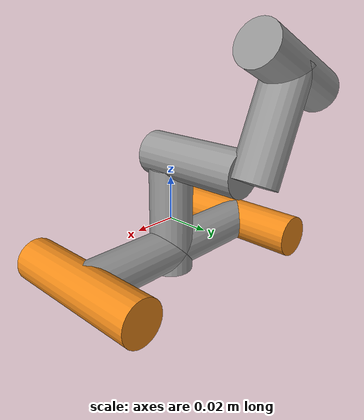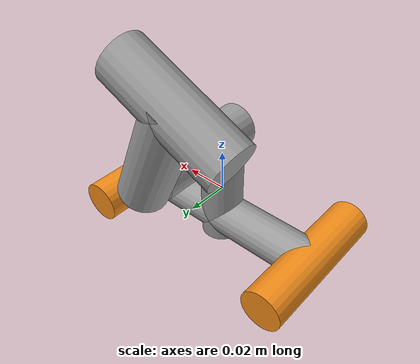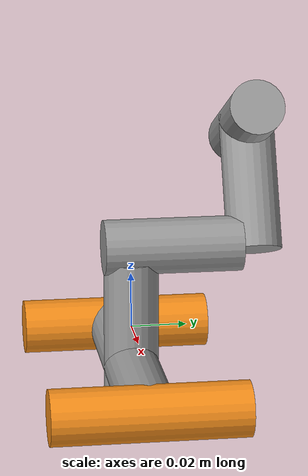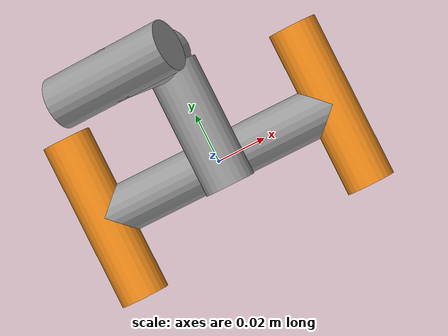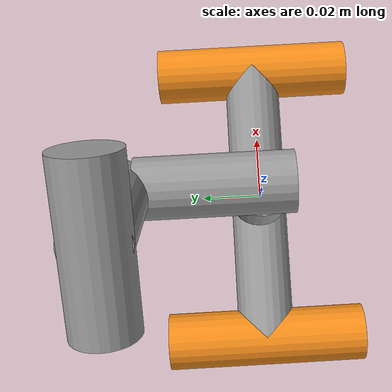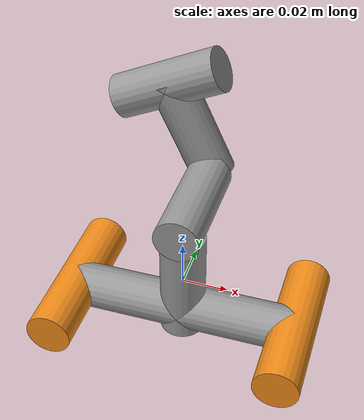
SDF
<?xml version='1.0'?>
<sdf version='1.7'>
  <model name='acoustic_reciever'>
    <link name='link'>
      <inertial>
        <mass>0.0001</mass>
        <inertia>
          <ixx>9e-08</ixx>
          <ixy>0</ixy>
          <ixz>0</ixz>
          <iyy>9e-08</iyy>
          <iyz>0</iyz>
          <izz>1e-08</izz>
        </inertia>
        <pose>0 0 0 0 -0 0</pose>
      </inertial>
      <self_collide>0</self_collide>
      <enable_wind>0</enable_wind>
      <kinematic>0</kinematic>
      <pose>0 -0 -0.015 -0.079518 1.57079 -0.079518</pose>
      <gravity>1</gravity>
      <visual name='visual'>
        <geometry>
          <cylinder>
            <radius>0.01</radius>
            <length>0.1</length>
          </cylinder>
        </geometry>
        <material>
          <script>
            <name>Gazebo/Grey</name>
            <uri>file://media/materials/scripts/gazebo.material</uri>
          </script>
          <shader type='pixel'>
            <normal_map>__default__</normal_map>
          </shader>
          <ambient>0.3 0.3 0.3 1</ambient>
          <diffuse>0.7 0.7 0.7 1</diffuse>
          <specular>0.01 0.01 0.01 1</specular>
          <emissive>0 0 0 1</emissive>
        </material>
        <pose>0 0 0 0 -0 0</pose>
        <transparency>0</transparency>
        <cast_shadows>1</cast_shadows>
      </visual>
      <collision name='collision_2'>
        <laser_retro>0</laser_retro>
        <max_contacts>10</max_contacts>
        <pose>0 0 0 0 -0 0</pose>
        <geometry>
          <box>
            <size>0.02 0.2 0.1</size>
          </box>
        </geometry>
        <surface>
          <friction>
            <ode>
              <mu>1</mu>
              <mu2>1</mu2>
              <fdir1>0 0 0</fdir1>
              <slip1>0</slip1>
              <slip2>0</slip2>
            </ode>
            <torsional>
              <coefficient>1</coefficient>
              <patch_radius>0</patch_radius>
              <surface_radius>0</surface_radius>
              <use_patch_radius>1</use_patch_radius>
              <ode>
                <slip>0</slip>
              </ode>
            </torsional>
          </friction>
          <bounce>
            <restitution_coefficient>0</restitution_coefficient>
            <threshold>1e+06</threshold>
          </bounce>
          <contact>
            <collide_without_contact>0</collide_without_contact>
            <collide_without_contact_bitmask>1</collide_without_contact_bitmask>
            <collide_bitmask>1</collide_bitmask>
            <ode>
              <soft_cfm>0</soft_cfm>
              <soft_erp>0.2</soft_erp>
              <kp>1e+13</kp>
              <kd>1</kd>
              <max_vel>0.01</max_vel>
              <min_depth>0</min_depth>
            </ode>
            <bullet>
              <split_impulse>1</split_impulse>
              <split_impulse_penetration_threshold>-0.01</split_impulse_penetration_threshold>
              <soft_cfm>0</soft_cfm>
              <soft_erp>0.2</soft_erp>
              <kp>1e+13</kp>
              <kd>1</kd>
            </bullet>
          </contact>
        </surface>
      </collision>
    </link>
    <link name='link_clone'>
      <inertial>
        <mass>0.0001</mass>
        <inertia>
          <ixx>4e-08</ixx>
          <ixy>0</ixy>
          <ixz>0</ixz>
          <iyy>4e-08</iyy>
          <iyz>0</iyz>
          <izz>1e-08</izz>
        </inertia>
        <pose>0 0 0 0 -0 0</pose>
      </inertial>
      <self_collide>0</self_collide>
      <enable_wind>0</enable_wind>
      <kinematic>0</kinematic>
      <pose>0.05 -0 -0.015 0.013669 1.57079 1.58718</pose>
      <gravity>1</gravity>
      <visual name='visual'>
        <geometry>
          <cylinder>
            <radius>0.01</radius>
            <length>0.07</length>
          </cylinder>
        </geometry>
        <material>
          <script>
            <name>Gazebo/Orange</name>
            <uri>file://media/materials/scripts/gazebo.material</uri>
          </script>
          <shader type='pixel'>
            <normal_map>__default__</normal_map>
          </shader>
          <ambient>1 0.647 0 1</ambient>
          <diffuse>0.7 0.7 0.7 1</diffuse>
          <specular>0.1 0.006 0 1</specular>
          <emissive>0 0 0 1</emissive>
        </material>
        <pose>0 0 0 0 -0 0</pose>
        <transparency>0</transparency>
        <cast_shadows>1</cast_shadows>
      </visual>
      <collision name='collision'>
        <laser_retro>0</laser_retro>
        <max_contacts>10</max_contacts>
        <pose>0 0 0 0 -0 0</pose>
        <geometry>
          <cylinder>
            <radius>0.01</radius>
            <length>0.07</length>
          </cylinder>
        </geometry>
        <surface>
          <friction>
            <ode>
              <mu>1</mu>
              <mu2>1</mu2>
              <fdir1>0 0 0</fdir1>
              <slip1>0</slip1>
              <slip2>0</slip2>
            </ode>
            <torsional>
              <coefficient>1</coefficient>
              <patch_radius>0</patch_radius>
              <surface_radius>0</surface_radius>
              <use_patch_radius>1</use_patch_radius>
              <ode>
                <slip>0</slip>
              </ode>
            </torsional>
          </friction>
          <bounce>
            <restitution_coefficient>0</restitution_coefficient>
            <threshold>1e+06</threshold>
          </bounce>
          <contact>
            <collide_without_contact>0</collide_without_contact>
            <collide_without_contact_bitmask>1</collide_without_contact_bitmask>
            <collide_bitmask>1</collide_bitmask>
            <ode>
              <soft_cfm>0</soft_cfm>
              <soft_erp>0.2</soft_erp>
              <kp>1e+13</kp>
              <kd>1</kd>
              <max_vel>0.01</max_vel>
              <min_depth>0</min_depth>
            </ode>
            <bullet>
              <split_impulse>1</split_impulse>
              <split_impulse_penetration_threshold>-0.01</split_impulse_penetration_threshold>
              <soft_cfm>0</soft_cfm>
              <soft_erp>0.2</soft_erp>
              <kp>1e+13</kp>
              <kd>1</kd>
            </bullet>
          </contact>
        </surface>
      </collision>
    </link>
    <link name='link_clone_0'>
      <inertial>
        <mass>0.0001</mass>
        <inertia>
          <ixx>2e-08</ixx>
          <ixy>0</ixy>
          <ixz>0</ixz>
          <iyy>2e-08</iyy>
          <iyz>0</iyz>
          <izz>1e-08</izz>
        </inertia>
        <pose>0 0 0 0 -0 0</pose>
      </inertial>
      <self_collide>0</self_collide>
      <enable_wind>0</enable_wind>
      <kinematic>0</kinematic>
      <pose>0 0 0 0 -0 0</pose>
      <gravity>1</gravity>
      <visual name='visual'>
        <geometry>
          <cylinder>
            <radius>0.01</radius>
            <length>0.05</length>
          </cylinder>
        </geometry>
        <material>
          <script>
            <name>Gazebo/Grey</name>
            <uri>file://media/materials/scripts/gazebo.material</uri>
          </script>
          <shader type='pixel'>
            <normal_map>__default__</normal_map>
          </shader>
          <ambient>0.3 0.3 0.3 1</ambient>
          <diffuse>0.7 0.7 0.7 1</diffuse>
          <specular>0.01 0.01 0.01 1</specular>
          <emissive>0 0 0 1</emissive>
        </material>
        <pose>0 0 0 0 -0 0</pose>
        <transparency>0</transparency>
        <cast_shadows>1</cast_shadows>
      </visual>
      <collision name='collision'>
        <laser_retro>0</laser_retro>
        <max_contacts>10</max_contacts>
        <pose>0 0 0 0 -0 0</pose>
        <geometry>
          <cylinder>
            <radius>0.01</radius>
            <length>0.05</length>
          </cylinder>
        </geometry>
        <surface>
          <friction>
            <ode>
              <mu>1</mu>
              <mu2>1</mu2>
              <fdir1>0 0 0</fdir1>
              <slip1>0</slip1>
              <slip2>0</slip2>
            </ode>
            <torsional>
              <coefficient>1</coefficient>
              <patch_radius>0</patch_radius>
              <surface_radius>0</surface_radius>
              <use_patch_radius>1</use_patch_radius>
              <ode>
                <slip>0</slip>
              </ode>
            </torsional>
          </friction>
          <bounce>
            <restitution_coefficient>0</restitution_coefficient>
            <threshold>1e+06</threshold>
          </bounce>
          <contact>
            <collide_without_contact>0</collide_without_contact>
            <collide_without_contact_bitmask>1</collide_without_contact_bitmask>
            <collide_bitmask>1</collide_bitmask>
            <ode>
              <soft_cfm>0</soft_cfm>
              <soft_erp>0.2</soft_erp>
              <kp>1e+13</kp>
              <kd>1</kd>
              <max_vel>0.01</max_vel>
              <min_depth>0</min_depth>
            </ode>
            <bullet>
              <split_impulse>1</split_impulse>
              <split_impulse_penetration_threshold>-0.01</split_impulse_penetration_threshold>
              <soft_cfm>0</soft_cfm>
              <soft_erp>0.2</soft_erp>
              <kp>1e+13</kp>
              <kd>1</kd>
            </bullet>
          </contact>
        </surface>
      </collision>
    </link>
    <link name='link_clone_0_clone'>
      <inertial>
        <mass>1e-08</mass>
        <inertia>
          <ixx>0</ixx>
          <ixy>0</ixy>
          <ixz>0</ixz>
          <iyy>0</iyy>
          <iyz>0</iyz>
          <izz>0</izz>
        </inertia>
        <pose>0 0 0 0 -0 0</pose>
      </inertial>
      <self_collide>0</self_collide>
      <enable_wind>0</enable_wind>
      <kinematic>0</kinematic>
      <pose>0 0.015 0.03 1.5708 -0 0</pose>
      <gravity>1</gravity>
      <visual name='visual'>
        <geometry>
          <cylinder>
            <radius>0.01</radius>
            <length>0.05</length>
          </cylinder>
        </geometry>
        <material>
          <script>
            <name>Gazebo/Grey</name>
            <uri>file://media/materials/scripts/gazebo.material</uri>
          </script>
          <shader type='pixel'>
            <normal_map>__default__</normal_map>
          </shader>
          <ambient>0.3 0.3 0.3 1</ambient>
          <diffuse>0.7 0.7 0.7 1</diffuse>
          <specular>0.01 0.01 0.01 1</specular>
          <emissive>0 0 0 1</emissive>
        </material>
        <pose>0 0 0 0 -0 0</pose>
        <transparency>0</transparency>
        <cast_shadows>1</cast_shadows>
      </visual>
      <collision name='collision'>
        <laser_retro>0</laser_retro>
        <max_contacts>10</max_contacts>
        <pose>0 0 0 0 -0 0</pose>
        <geometry>
          <cylinder>
            <radius>0.01</radius>
            <length>0.05</length>
          </cylinder>
        </geometry>
        <surface>
          <friction>
            <ode>
              <mu>1</mu>
              <mu2>1</mu2>
              <fdir1>0 0 0</fdir1>
              <slip1>0</slip1>
              <slip2>0</slip2>
            </ode>
            <torsional>
              <coefficient>1</coefficient>
              <patch_radius>0</patch_radius>
              <surface_radius>0</surface_radius>
              <use_patch_radius>1</use_patch_radius>
              <ode>
                <slip>0</slip>
              </ode>
            </torsional>
          </friction>
          <bounce>
            <restitution_coefficient>0</restitution_coefficient>
            <threshold>1e+06</threshold>
          </bounce>
          <contact>
            <collide_without_contact>0</collide_without_contact>
            <collide_without_contact_bitmask>1</collide_without_contact_bitmask>
            <collide_bitmask>1</collide_bitmask>
            <ode>
              <soft_cfm>0</soft_cfm>
              <soft_erp>0.2</soft_erp>
              <kp>1e+13</kp>
              <kd>1</kd>
              <max_vel>0.01</max_vel>
              <min_depth>0</min_depth>
            </ode>
            <bullet>
              <split_impulse>1</split_impulse>
              <split_impulse_penetration_threshold>-0.01</split_impulse_penetration_threshold>
              <soft_cfm>0</soft_cfm>
              <soft_erp>0.2</soft_erp>
              <kp>1e+13</kp>
              <kd>1</kd>
            </bullet>
          </contact>
        </surface>
      </collision>
    </link>
    <link name='link_clone_0_clone_clone'>
      <inertial>
        <mass>1e-08</mass>
        <inertia>
          <ixx>0</ixx>
          <ixy>0</ixy>
          <ixz>0</ixz>
          <iyy>0</iyy>
          <iyz>0</iyz>
          <izz>0</izz>
        </inertia>
        <pose>0 0 0 0 -0 0</pose>
      </inertial>
      <self_collide>0</self_collide>
      <enable_wind>0</enable_wind>
      <kinematic>0</kinematic>
      <pose>-0.01 0.045 0.05 0 -0.4363 0</pose>
      <gravity>1</gravity>
      <visual name='visual'>
        <geometry>
          <cylinder>
            <radius>0.01</radius>
            <length>0.05</length>
          </cylinder>
        </geometry>
        <material>
          <script>
            <name>Gazebo/Grey</name>
            <uri>file://media/materials/scripts/gazebo.material</uri>
          </script>
          <shader type='pixel'>
            <normal_map>__default__</normal_map>
          </shader>
          <ambient>0.3 0.3 0.3 1</ambient>
          <diffuse>0.7 0.7 0.7 1</diffuse>
          <specular>0.01 0.01 0.01 1</specular>
          <emissive>0 0 0 1</emissive>
        </material>
        <pose>0 0 0 0 -0 0</pose>
        <transparency>0</transparency>
        <cast_shadows>1</cast_shadows>
      </visual>
      <collision name='collision'>
        <laser_retro>0</laser_retro>
        <max_contacts>10</max_contacts>
        <pose>0 0 0 0 -0 0</pose>
        <geometry>
          <cylinder>
            <radius>0.01</radius>
            <length>0.05</length>
          </cylinder>
        </geometry>
        <surface>
          <friction>
            <ode>
              <mu>1</mu>
              <mu2>1</mu2>
              <fdir1>0 0 0</fdir1>
              <slip1>0</slip1>
              <slip2>0</slip2>
            </ode>
            <torsional>
              <coefficient>1</coefficient>
              <patch_radius>0</patch_radius>
              <surface_radius>0</surface_radius>
              <use_patch_radius>1</use_patch_radius>
              <ode>
                <slip>0</slip>
              </ode>
            </torsional>
          </friction>
          <bounce>
            <restitution_coefficient>0</restitution_coefficient>
            <threshold>1e+06</threshold>
          </bounce>
          <contact>
            <collide_without_contact>0</collide_without_contact>
            <collide_without_contact_bitmask>1</collide_without_contact_bitmask>
            <collide_bitmask>1</collide_bitmask>
            <ode>
              <soft_cfm>0</soft_cfm>
              <soft_erp>0.2</soft_erp>
              <kp>1e+13</kp>
              <kd>1</kd>
              <max_vel>0.01</max_vel>
              <min_depth>0</min_depth>
            </ode>
            <bullet>
              <split_impulse>1</split_impulse>
              <split_impulse_penetration_threshold>-0.01</split_impulse_penetration_threshold>
              <soft_cfm>0</soft_cfm>
              <soft_erp>0.2</soft_erp>
              <kp>1e+13</kp>
              <kd>1</kd>
            </bullet>
          </contact>
        </surface>
      </collision>
    </link>
    <link name='link_clone_0_clone_clone_clone'>
      <inertial>
        <mass>1e-08</mass>
        <inertia>
          <ixx>0</ixx>
          <ixy>0</ixy>
          <ixz>0</ixz>
          <iyy>0</iyy>
          <iyz>0</iyz>
          <izz>0</izz>
        </inertia>
        <pose>0 0 0 0 -0 0</pose>
      </inertial>
      <self_collide>0</self_collide>
      <enable_wind>0</enable_wind>
      <kinematic>0</kinematic>
      <pose>-0.02 0.045 0.07 0 1.1345 0</pose>
      <gravity>1</gravity>
      <visual name='visual'>
        <geometry>
          <cylinder>
            <radius>0.01</radius>
            <length>0.05</length>
          </cylinder>
        </geometry>
        <material>
          <script>
            <name>Gazebo/Grey</name>
            <uri>file://media/materials/scripts/gazebo.material</uri>
          </script>
          <shader type='pixel'>
            <normal_map>__default__</normal_map>
          </shader>
          <ambient>0.3 0.3 0.3 1</ambient>
          <diffuse>0.7 0.7 0.7 1</diffuse>
          <specular>0.01 0.01 0.01 1</specular>
          <emissive>0 0 0 1</emissive>
        </material>
        <pose>0 0 0 0 -0 0</pose>
        <transparency>0</transparency>
        <cast_shadows>1</cast_shadows>
      </visual>
      <collision name='collision_1'>
        <laser_retro>0</laser_retro>
        <max_contacts>10</max_contacts>
        <pose>0 0 0 0 -0 0</pose>
        <geometry>
          <box>
            <size>0.02 0.01 0.05</size>
          </box>
        </geometry>
        <surface>
          <friction>
            <ode>
              <mu>1</mu>
              <mu2>1</mu2>
              <fdir1>0 0 0</fdir1>
              <slip1>0</slip1>
              <slip2>0</slip2>
            </ode>
            <torsional>
              <coefficient>1</coefficient>
              <patch_radius>0</patch_radius>
              <surface_radius>0</surface_radius>
              <use_patch_radius>1</use_patch_radius>
              <ode>
                <slip>0</slip>
              </ode>
            </torsional>
          </friction>
          <bounce>
            <restitution_coefficient>0</restitution_coefficient>
            <threshold>1e+06</threshold>
          </bounce>
          <contact>
            <collide_without_contact>0</collide_without_contact>
            <collide_without_contact_bitmask>1</collide_without_contact_bitmask>
            <collide_bitmask>1</collide_bitmask>
            <ode>
              <soft_cfm>0</soft_cfm>
              <soft_erp>0.2</soft_erp>
              <kp>1e+13</kp>
              <kd>1</kd>
              <max_vel>0.01</max_vel>
              <min_depth>0</min_depth>
            </ode>
            <bullet>
              <split_impulse>1</split_impulse>
              <split_impulse_penetration_threshold>-0.01</split_impulse_penetration_threshold>
              <soft_cfm>0</soft_cfm>
              <soft_erp>0.2</soft_erp>
              <kp>1e+13</kp>
              <kd>1</kd>
            </bullet>
          </contact>
        </surface>
      </collision>
    </link>
    <link name='link_clone_clone'>
      <inertial>
        <mass>0.0001</mass>
        <inertia>
          <ixx>4e-08</ixx>
          <ixy>0</ixy>
          <ixz>0</ixz>
          <iyy>4e-08</iyy>
          <iyz>0</iyz>
          <izz>1e-08</izz>
        </inertia>
        <pose>0 0 0 0 -0 0</pose>
      </inertial>
      <self_collide>0</self_collide>
      <enable_wind>0</enable_wind>
      <kinematic>0</kinematic>
      <pose>-0.05 -0 -0.015 0.01832 1.57079 1.59183</pose>
      <gravity>1</gravity>
      <visual name='visual'>
        <geometry>
          <cylinder>
            <radius>0.01</radius>
            <length>0.07</length>
          </cylinder>
        </geometry>
        <material>
          <script>
            <name>Gazebo/Orange</name>
            <uri>file://media/materials/scripts/gazebo.material</uri>
          </script>
          <shader type='pixel'>
            <normal_map>__default__</normal_map>
          </shader>
          <ambient>1 0.647 0 1</ambient>
          <diffuse>0.7 0.7 0.7 1</diffuse>
          <specular>0.1 0.006 0 1</specular>
          <emissive>0 0 0 1</emissive>
        </material>
        <pose>0 0 0 0 -0 0</pose>
        <transparency>0</transparency>
        <cast_shadows>1</cast_shadows>
      </visual>
      <collision name='collision'>
        <laser_retro>0</laser_retro>
        <max_contacts>10</max_contacts>
        <pose>0 0 0 0 -0 0</pose>
        <geometry>
          <cylinder>
            <radius>0.01</radius>
            <length>0.07</length>
          </cylinder>
        </geometry>
        <surface>
          <friction>
            <ode>
              <mu>1</mu>
              <mu2>1</mu2>
              <fdir1>0 0 0</fdir1>
              <slip1>0</slip1>
              <slip2>0</slip2>
            </ode>
            <torsional>
              <coefficient>1</coefficient>
              <patch_radius>0</patch_radius>
              <surface_radius>0</surface_radius>
              <use_patch_radius>1</use_patch_radius>
              <ode>
                <slip>0</slip>
              </ode>
            </torsional>
          </friction>
          <bounce>
            <restitution_coefficient>0</restitution_coefficient>
            <threshold>1e+06</threshold>
          </bounce>
          <contact>
            <collide_without_contact>0</collide_without_contact>
            <collide_without_contact_bitmask>1</collide_without_contact_bitmask>
            <collide_bitmask>1</collide_bitmask>
            <ode>
              <soft_cfm>0</soft_cfm>
              <soft_erp>0.2</soft_erp>
              <kp>1e+13</kp>
              <kd>1</kd>
              <max_vel>0.01</max_vel>
              <min_depth>0</min_depth>
            </ode>
            <bullet>
              <split_impulse>1</split_impulse>
              <split_impulse_penetration_threshold>-0.01</split_impulse_penetration_threshold>
              <soft_cfm>0</soft_cfm>
              <soft_erp>0.2</soft_erp>
              <kp>1e+13</kp>
              <kd>1</kd>
            </bullet>
          </contact>
        </surface>
      </collision>
    </link>
    <joint name='link_JOINT_6' type='fixed'>
      <parent>link</parent>
      <child>link_clone</child>
      <pose>0 0 0 0 -0 0</pose>
      <physics>
        <ode>
          <limit>
            <cfm>0</cfm>
            <erp>0.2</erp>
          </limit>
          <suspension>
            <cfm>0</cfm>
            <erp>0.2</erp>
          </suspension>
        </ode>
      </physics>
    </joint>
    <joint name='link_JOINT_7' type='fixed'>
      <parent>link</parent>
      <child>link_clone_0</child>
      <pose>0 0 0 0 -0 0</pose>
      <physics>
        <ode>
          <limit>
            <cfm>0</cfm>
            <erp>0.2</erp>
          </limit>
          <suspension>
            <cfm>0</cfm>
            <erp>0.2</erp>
          </suspension>
        </ode>
      </physics>
    </joint>
    <joint name='link_JOINT_8' type='fixed'>
      <parent>link</parent>
      <child>link_clone_clone</child>
      <pose>0 0 0 0 -0 0</pose>
      <physics>
        <ode>
          <limit>
            <cfm>0</cfm>
            <erp>0.2</erp>
          </limit>
          <suspension>
            <cfm>0</cfm>
            <erp>0.2</erp>
          </suspension>
        </ode>
      </physics>
    </joint>
    <joint name='link_clone_0_JOINT_9' type='fixed'>
      <parent>link_clone_0</parent>
      <child>link_clone_0_clone</child>
      <pose>0 0 0 0 -0 0</pose>
      <physics>
        <ode>
          <limit>
            <cfm>0</cfm>
            <erp>0.2</erp>
          </limit>
          <suspension>
            <cfm>0</cfm>
            <erp>0.2</erp>
          </suspension>
        </ode>
      </physics>
    </joint>
    <joint name='link_clone_0_clone_JOINT_10' type='fixed'>
      <parent>link_clone_0_clone</parent>
      <child>link_clone_0_clone_clone</child>
      <pose>0 0 0 0 -0 0</pose>
      <physics>
        <ode>
          <limit>
            <cfm>0</cfm>
            <erp>0.2</erp>
          </limit>
          <suspension>
            <cfm>0</cfm>
            <erp>0.2</erp>
          </suspension>
        </ode>
      </physics>
    </joint>
    <joint name='link_clone_0_clone_clone_JOINT_11' type='fixed'>
      <parent>link_clone_0_clone_clone</parent>
      <child>link_clone_0_clone_clone_clone</child>
      <pose>0 0 0 0 -0 0</pose>
      <physics>
        <ode>
          <limit>
            <cfm>0</cfm>
            <erp>0.2</erp>
          </limit>
          <suspension>
            <cfm>0</cfm>
            <erp>0.2</erp>
          </suspension>
        </ode>
      </physics>
    </joint>
    <static>0</static>
    <allow_auto_disable>1</allow_auto_disable>
  </model>
</sdf>
